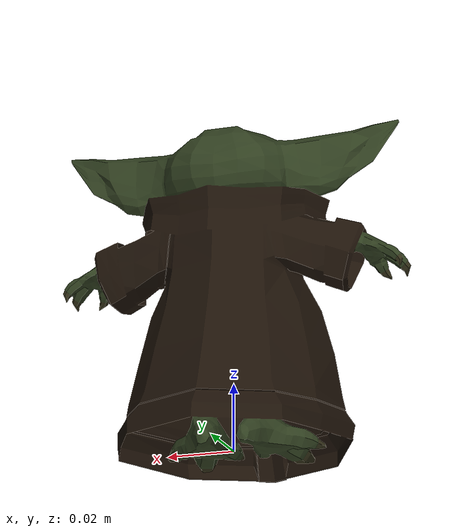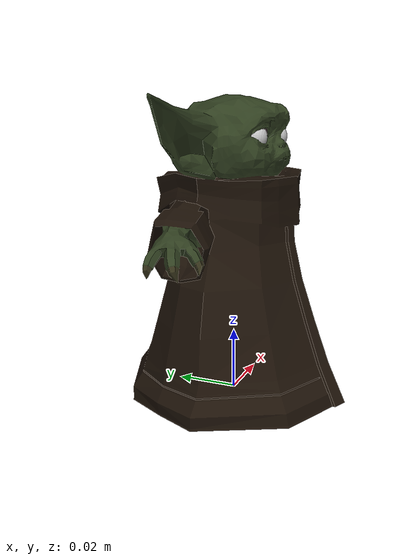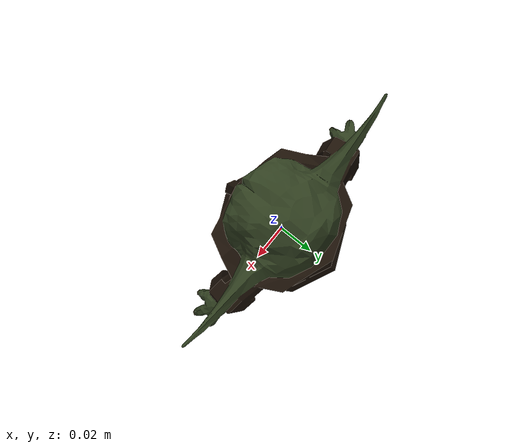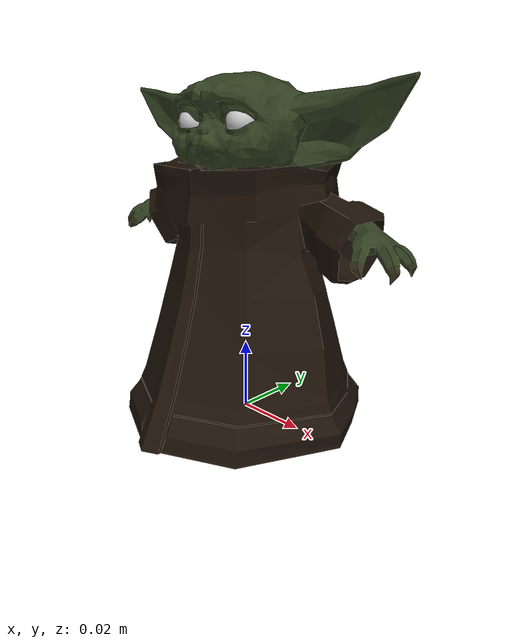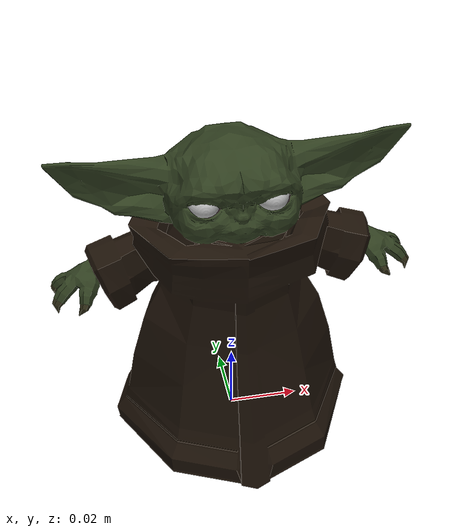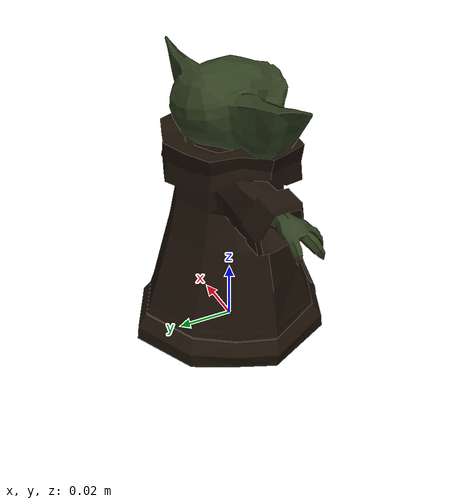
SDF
<?xml version="1.0"?>
<sdf version='1.4'>
  <model name="baby_yoda">
      <static>true</static>
      <link name="link">
        <inertial>
          <pose>0 0 0 0 0 0</pose>
          <mass>1.0</mass>
          <inertia>
            <ixx>0.0385483333333</ixx>
            <ixy>000000</ixy>
            <ixz>0.000000</ixz>
            <iyy>0.107087533333</iyy>
            <iyz>0.000000</iyz>
            <izz>0.1243542</izz>
          </inertia>
        </inertial>
        <collision name="collision">
          <pose>0 0 0 0 0 0</pose>
          <geometry>
            <mesh>
                <uri>model://baby_yoda/meshes/baby_yoda.dae</uri>
                <scale>0.002 0.002 0.02</scale>
            </mesh>
          </geometry>
        </collision>
        <visual name="visual">
          <pose>0 0 0 0 0 0</pose>
          <geometry>
            <mesh>
                <uri>model://baby_yoda/meshes/baby_yoda.dae</uri>
                <scale>0.02 0.02 0.02</scale>
            </mesh>
          </geometry>
        </visual>
      </link>
    </model>
</sdf>
